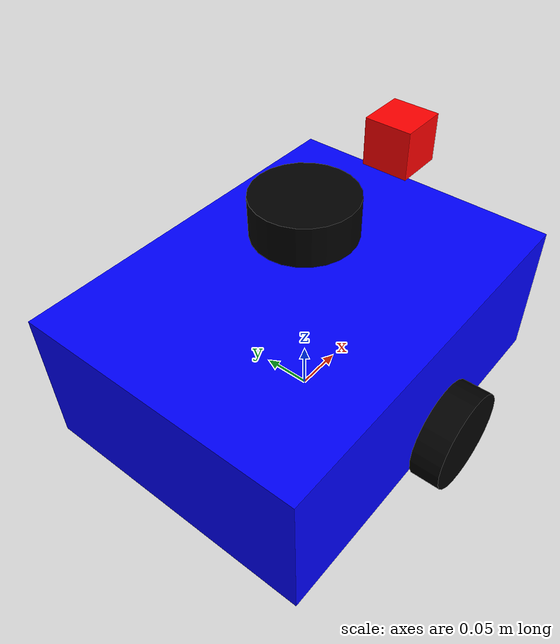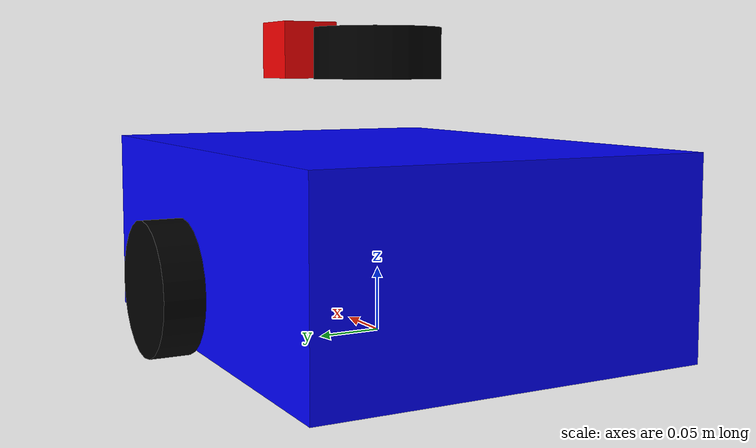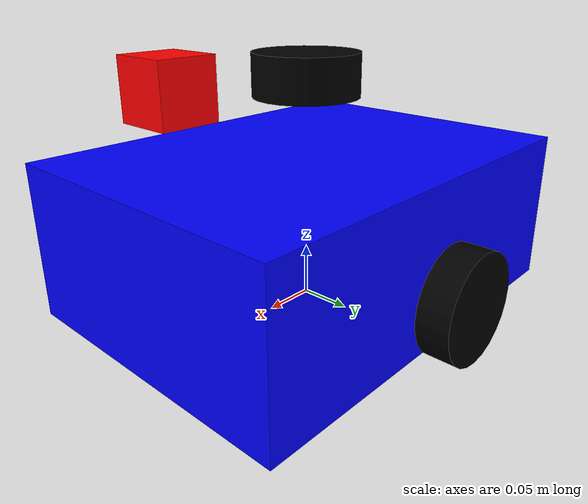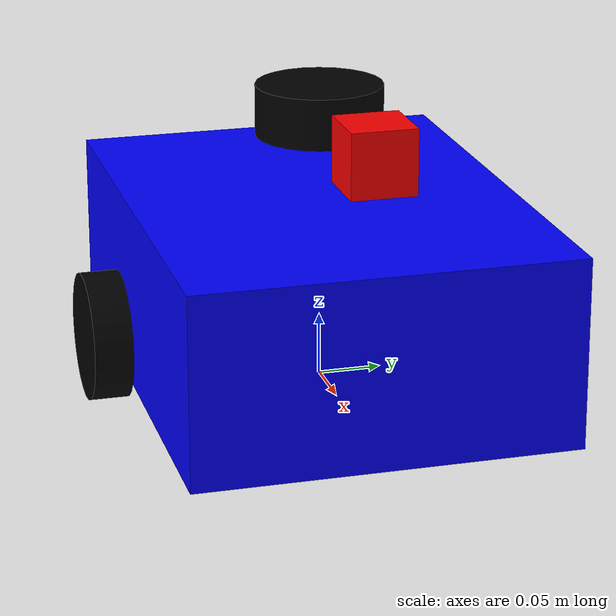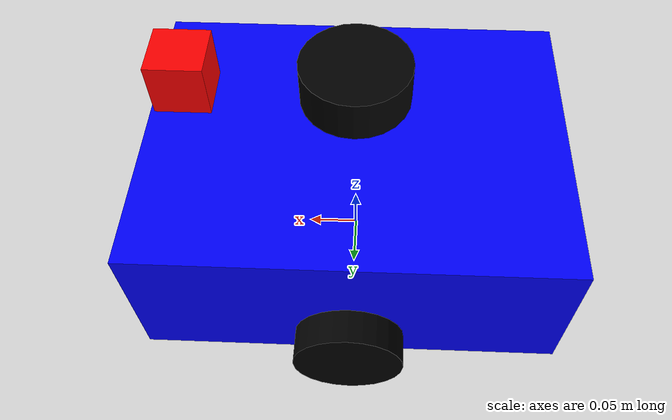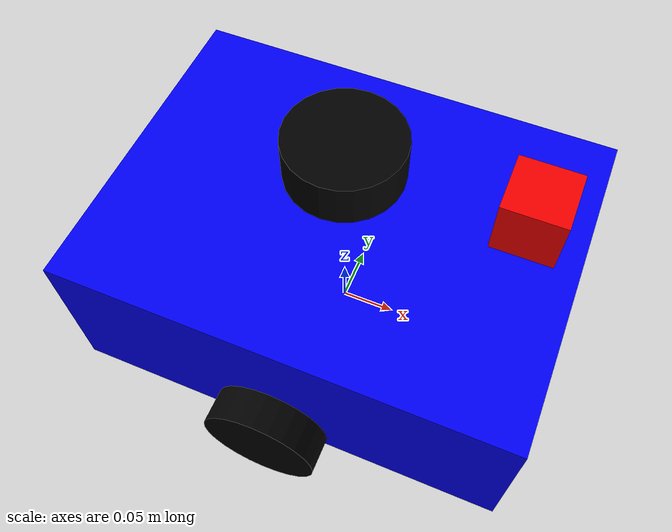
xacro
<?xml version="1.0"?>
<robot name="my_robot" xmlns:xacro="http://www.ros.org/wiki/xacro">

  <!-- ==================== MATERIALS ==================== -->
  <material name="black">
    <color rgba="0 0 0 1"/>
  </material>
  <material name="white">
    <color rgba="1 1 1 1"/>
  </material>
  <material name="red">
    <color rgba="1 0 0 1"/>
  </material>
  <material name="blue">
    <color rgba="0 0 1 1"/>
  </material>
  <material name="green">
    <color rgba="0 1 0 1"/>
  </material>
  <material name="gray">
    <color rgba="0.5 0.5 0.5 1"/>
  </material>

  <!-- ==================== BASE LINK ==================== -->
  <link name="base_link">
    <visual>
      <geometry>
        <!-- Hình chữ nhật bo tròn dùng capsule hoặc box + cylinder -->
        <box size="0.4 0.3 0.15"/>
      </geometry>
      <origin xyz="0 0 0.075" rpy="0 0 0"/>
      <material name="blue"/>
    </visual>

    <collision>
      <geometry>
        <box size="0.4 0.3 0.15"/>
      </geometry>
      <origin xyz="0 0 0.075" rpy="0 0 0"/>
    </collision>

    <inertial>
      <mass value="5.0"/>
      <inertia ixx="0.05" ixy="0.0" ixz="0.0"
               iyy="0.08" iyz="0.0" izz="0.1"/>
      <origin xyz="0 0 0.075" rpy="0 0 0"/>
    </inertial>
  </link>

  <!-- ==================== BASE FOOTPRINT ==================== -->
  <link name="base_footprint"/>

  <joint name="base_footprint_joint" type="fixed">
    <parent link="base_footprint"/>
    <child link="base_link"/>
    <origin xyz="0 0 0" rpy="0 0 0"/>
  </joint>

  <!-- ==================== LIDAR ==================== -->
  <link name="lidar_link">
    <visual>
      <geometry>
        <cylinder radius="0.05" length="0.04"/>
      </geometry>
      <origin xyz="0 0 0.02" rpy="0 0 0"/>
      <material name="black"/>
    </visual>

    <collision>
      <geometry>
        <cylinder radius="0.05" length="0.04"/>
      </geometry>
      <origin xyz="0 0 0.02" rpy="0 0 0"/>
    </collision>

    <inertial>
      <mass value="0.1"/>
      <inertia ixx="0.0001" ixy="0" ixz="0"
               iyy="0.0001" iyz="0" izz="0.0001"/>
    </inertial>
  </link>

  <joint name="lidar_joint" type="fixed">
    <parent link="base_link"/>
    <child link="lidar_link"/>
    <origin xyz="0 0 0.20" rpy="0 0 3.141592653589793"/>
  </joint>

  <!-- ==================== CAMERA ==================== -->
  <link name="camera_link">
    <visual>
      <geometry>
        <box size="0.05 0.05 0.05"/>
      </geometry>
      <origin xyz="0 0 0.025" rpy="0 0 0"/>
      <material name="red"/>
    </visual>

    <collision>
      <geometry>
        <box size="0.05 0.05 0.05"/>
      </geometry>
      <origin xyz="0 0 0.025" rpy="0 0 0"/>
    </collision>

    <inertial>
      <mass value="0.1"/>
      <inertia ixx="0.0001" ixy="0" ixz="0"
               iyy="0.0001" iyz="0" izz="0.0001"/>
    </inertial>
  </link>

  <joint name="camera_joint" type="fixed">
    <parent link="base_link"/>
    <child link="camera_link"/>
    <origin xyz="0.15 0 0.20" rpy="0 0 0"/>
  </joint>

  <!-- Camera optical frame (cho ROS) -->
  <link name="camera_depth_frame"/>

  <joint name="camera_depth_joint" type="fixed">
    <parent link="camera_link"/>
    <child link="camera_depth_frame"/>
    <origin xyz="0 0 0" rpy="-1.57 0 -1.57"/>
  </joint>

  <!-- ==================== LEFT WHEEL ==================== -->
  <link name="left_wheel_link">
    <visual>
      <geometry>
        <cylinder radius="0.05" length="0.03"/>
      </geometry>
      <origin xyz="0 0 0" rpy="1.57 0 0"/>
      <material name="black"/>
    </visual>

    <collision>
      <geometry>
        <cylinder radius="0.05" length="0.03"/>
      </geometry>
      <origin xyz="0 0 0" rpy="1.57 0 0"/>
    </collision>

    <inertial>
      <mass value="0.5"/>
      <inertia ixx="0.001" ixy="0" ixz="0"
               iyy="0.001" iyz="0" izz="0.001"/>
    </inertial>
  </link>

  <joint name="left_wheel_joint" type="continuous">
    <parent link="base_link"/>
    <child link="left_wheel_link"/>
    <origin xyz="0 0.175 0.05" rpy="0 0 0"/>
    <axis xyz="0 1 0"/>
    <limit effort="10" velocity="10"/>
    <dynamics damping="0.1" friction="0.1"/>
  </joint>

  <!-- ==================== RIGHT WHEEL ==================== -->
  <link name="right_wheel_link">
    <visual>
      <geometry>
        <cylinder radius="0.05" length="0.03"/>
      </geometry>
      <origin xyz="0 0 0" rpy="1.57 0 0"/>
      <material name="black"/>
    </visual>

    <collision>
      <geometry>
        <cylinder radius="0.05" length="0.03"/>
      </geometry>
      <origin xyz="0 0 0" rpy="1.57 0 0"/>
    </collision>

    <inertial>
      <mass value="0.5"/>
      <inertia ixx="0.001" ixy="0" ixz="0"
               iyy="0.001" iyz="0" izz="0.001"/>
    </inertial>
  </link>

  <joint name="right_wheel_joint" type="continuous">
    <parent link="base_link"/>
    <child link="right_wheel_link"/>
    <origin xyz="0 -0.175 0.05" rpy="0 0 0"/>
    <axis xyz="0 1 0"/>
    <limit effort="10" velocity="10"/>
    <dynamics damping="0.1" friction="0.1"/>
  </joint>

  <!-- ==================== CASTOR WHEEL (tùy chọn) ==================== -->
  <link name="castor_wheel_link">
    <visual>
      <geometry>
        <sphere radius="0.03"/>
      </geometry>
      <origin xyz="0 0 0" rpy="0 0 0"/>
      <material name="gray"/>
    </visual>

    <collision>
      <geometry>
        <sphere radius="0.03"/>
      </geometry>
      <origin xyz="0 0 0" rpy="0 0 0"/>
    </collision>

    <inertial>
      <mass value="0.1"/>
      <inertia ixx="0.0001" ixy="0" ixz="0"
               iyy="0.0001" iyz="0" izz="0.0001"/>
    </inertial>
  </link>

  <joint name="castor_wheel_joint" type="fixed">
    <parent link="base_link"/>
    <child link="castor_wheel_link"/>
    <origin xyz="-0.15 0 0.03" rpy="0 0 0"/>
  </joint>

  <!-- ==================== GAZEBO PLUGINS ==================== -->

  <!-- Differential Drive Controller -->
  <gazebo>
    <plugin name="differential_drive_controller" filename="libgazebo_ros_diff_drive.so">
      <ros>
        <namespace>/</namespace>
        <remapping>cmd_vel:=cmd_vel</remapping>
        <remapping>odom:=odom</remapping>
      </ros>

      <update_rate>100</update_rate>

      <!-- Left wheel -->
      <left_joint>left_wheel_joint</left_joint>

      <!-- Right wheel -->
      <right_joint>right_wheel_joint</right_joint>

      <!-- Wheel separation -->
      <wheel_separation>0.35</wheel_separation>

      <!-- Wheel diameter -->
      <wheel_diameter>0.1</wheel_diameter>

      <!-- Maximum wheel velocity -->
      <max_wheel_velocity>10.0</max_wheel_velocity>

      <!-- Maximum wheel torque -->
      <max_wheel_acceleration>10.0</max_wheel_acceleration>

      <!-- Publish odometry -->
      <publish_odom>true</publish_odom>
      <publish_odom_tf>true</publish_odom_tf>
      <publish_wheel_tf>true</publish_wheel_tf>

      <odometry_frame>odom</odometry_frame>
      <robot_base_frame>base_footprint</robot_base_frame>
    </plugin>
  </gazebo>

  <!-- LiDAR Plugin (2D Laser) -->
  <gazebo reference="lidar_link">
    <sensor type="ray" name="lidar_sensor">
      <pose>0 0 0.02 0 0 0</pose>
      <visualize>true</visualize>
      <update_rate>10</update_rate>
      <ray>
        <scan>
          <horizontal>
            <samples>360</samples>
            <resolution>1</resolution>
            <min_angle>-3.14159</min_angle>
            <max_angle>3.14159</max_angle>
          </horizontal>
        </scan>
        <range>
          <min>0.05</min>
          <max>3.5</max>
          <resolution>0.01</resolution>
        </range>
        <noise>
          <type>gaussian</type>
          <mean>0.0</mean>
          <stddev>0.01</stddev>
        </noise>
      </ray>
      <plugin name="lidar_plugin" filename="libgazebo_ros_ray_sensor.so">
        <ros>
          <remapping>~/out:=scan</remapping>
        </ros>
        <output_type>sensor_msgs/LaserScan</output_type>
        <frame_name>lidar_link</frame_name>
      </plugin>
    </sensor>
  </gazebo>

  <!-- Camera Plugin -->
  <gazebo reference="camera_link">
    <sensor type="depth" name="camera_sensor">
      <pose>0 0 0.025 0 0 0</pose>
      <visualize>true</visualize>
      <update_rate>30</update_rate>
      <camera>
        <horizontal_fov>1.0472</horizontal_fov>
        <image>
          <width>640</width>
          <height>480</height>
          <format>R8G8B8</format>
        </image>
        <clip>
          <near>0.05</near>
          <far>3.5</far>
        </clip>
        <noise>
          <type>gaussian</type>
          <mean>0.0</mean>
          <stddev>0.007</stddev>
        </noise>
      </camera>
      <plugin name="camera_plugin" filename="libgazebo_ros_camera.so">
        <ros>
          <remapping>image_raw:=camera/image</remapping>
          <remapping>camera_info:=camera/camera_info</remapping>
        </ros>
        <frame_name>camera_depth_frame</frame_name>
      </plugin>
    </sensor>
  </gazebo>

  <!-- Material colors in Gazebo -->
  <gazebo reference="base_link">
    <material>Gazebo/Blue</material>
  </gazebo>
  <gazebo reference="lidar_link">
    <material>Gazebo/Black</material>
  </gazebo>
  <gazebo reference="camera_link">
    <material>Gazebo/Red</material>
  </gazebo>
  <gazebo reference="left_wheel_link">
    <material>Gazebo/Black</material>
  </gazebo>
  <gazebo reference="right_wheel_link">
    <material>Gazebo/Black</material>
  </gazebo>
  <gazebo reference="castor_wheel_link">
    <material>Gazebo/Gray</material>
  </gazebo>

</robot>
